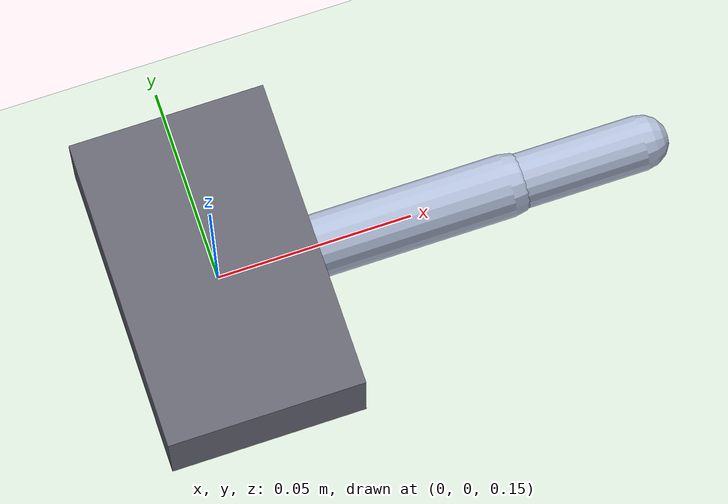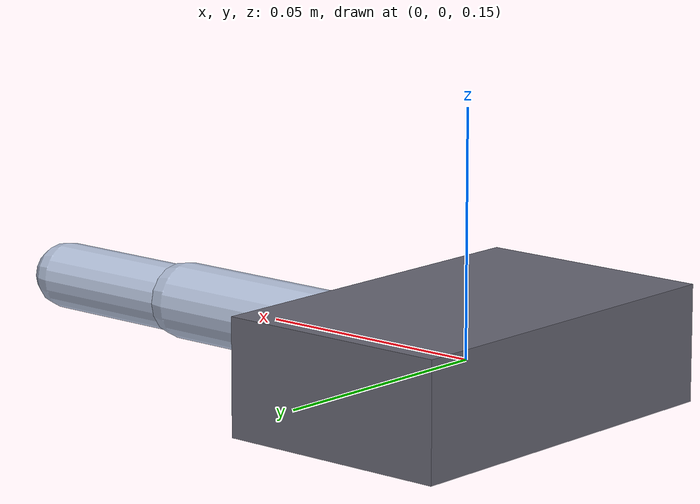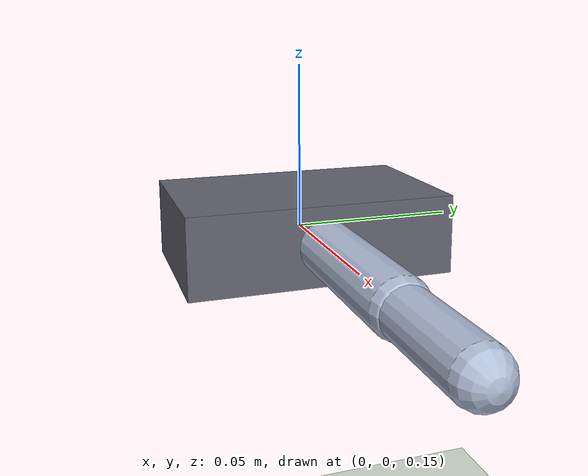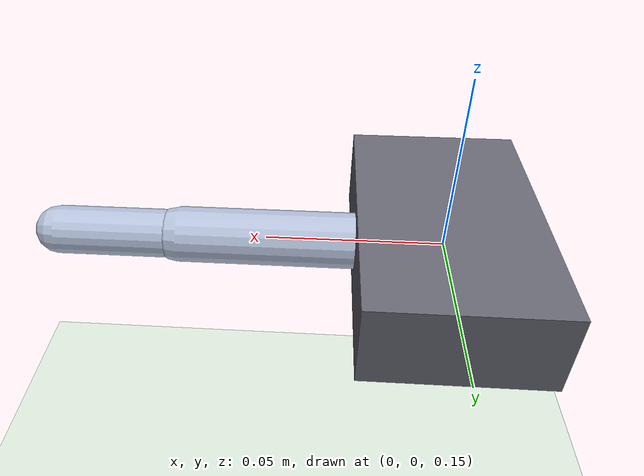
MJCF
<mujoco model="finger_v1">
  <compiler angle="degree" autolimits="true" inertiafromgeom="true"/>

  <option gravity="0 0 -9.81" timestep="0.002"/>

  <!-- 公共默认值，避免在每个元素重复写 -->
  <default>
    <joint type="hinge" axis="0 1 0" damping="0.1"/>
    <geom  type="capsule" rgba="0.7 0.75 0.85 1"/>
    <!-- position actuator: kp 是位置增益, forcerange 来自 HL-3915 堵转扭矩 1.39 N·m -->
    <position kp="100" forcerange="-1.39 1.39"/>
  </default>

  <worldbody>
    <light pos="0.2 0 0.5" dir="0 0 -1"/>
    <geom name="floor" type="plane" size="0.3 0.3 0.05" rgba="0.85 0.9 0.85 1"/>

    <!-- palm: 固定的手掌基座, 不加 freejoint 即被钉死在世界系 -->
    <body name="palm" pos="0 0 0.15">
      <geom name="palm_geom" type="box" size="0.025 0.04 0.012"
            rgba="0.4 0.4 0.45 1" mass="0.08"/>

      <!-- 近节指骨 (proximal phalanx): 从 MCP 关节出发, 沿 +x 方向 -->
      <body name="proximal" pos="0.025 0 0">
        <joint name="mcp" range="-10 90"/>
        <geom  name="proximal_geom"
               fromto="0 0 0 0.05 0 0"
               size="0.008"
               mass="0.04"/>

        <!-- 远节指骨 (distal phalanx): 从 PIP 关节出发, 继续沿 +x -->
        <body name="distal" pos="0.05 0 0">
          <joint name="pip" range="0 110"/>
          <geom  name="distal_geom"
                 fromto="0 0 0 0.035 0 0"
                 size="0.007"
                 mass="0.04"/>
        </body>
      </body>
    </body>
  </worldbody>

  <actuator>
    <!-- 控制信号是目标关节角度 (度), 与 joint range 单位一致 -->
    <position name="mcp_act" joint="mcp" ctrlrange="-10 90"/>
    <position name="pip_act" joint="pip" ctrlrange="0 110"/>
  </actuator>
</mujoco>
